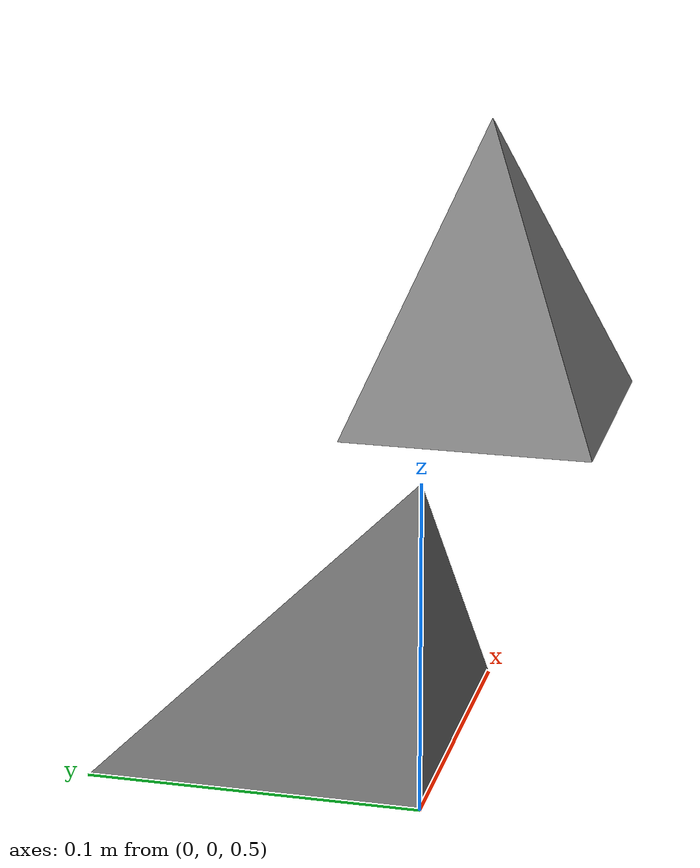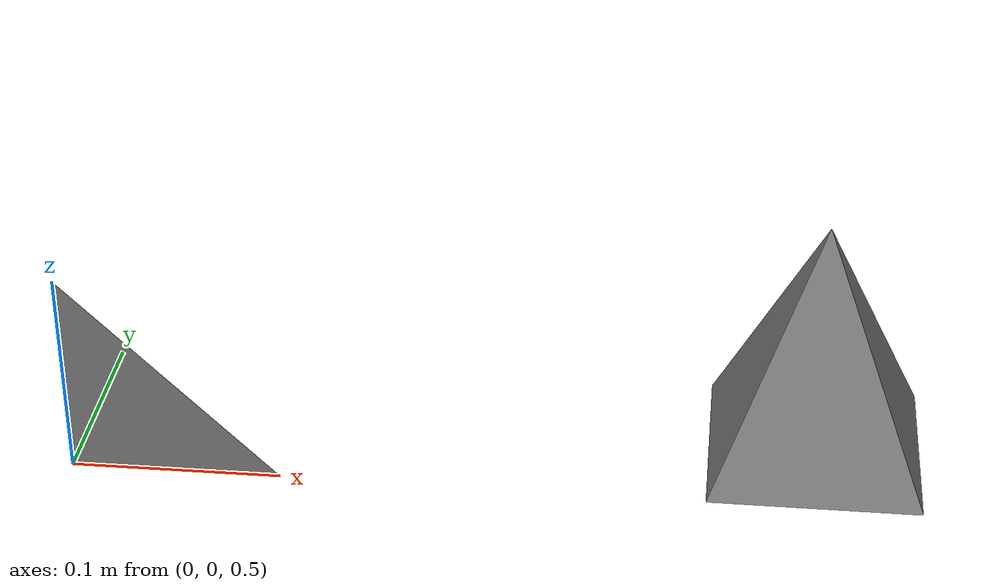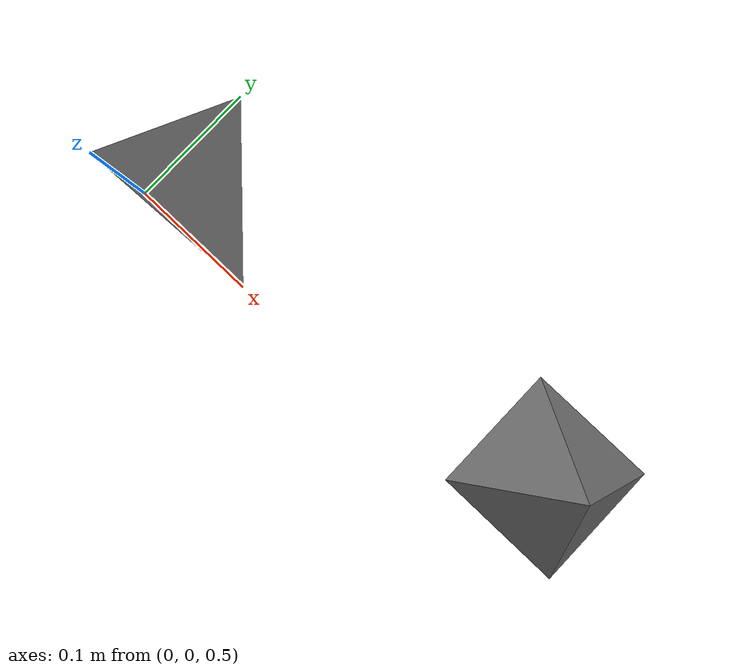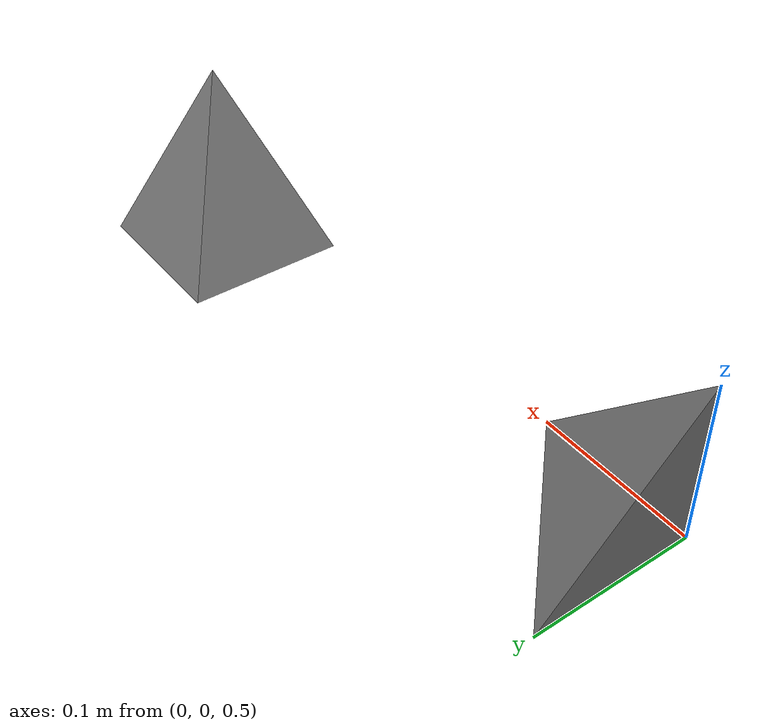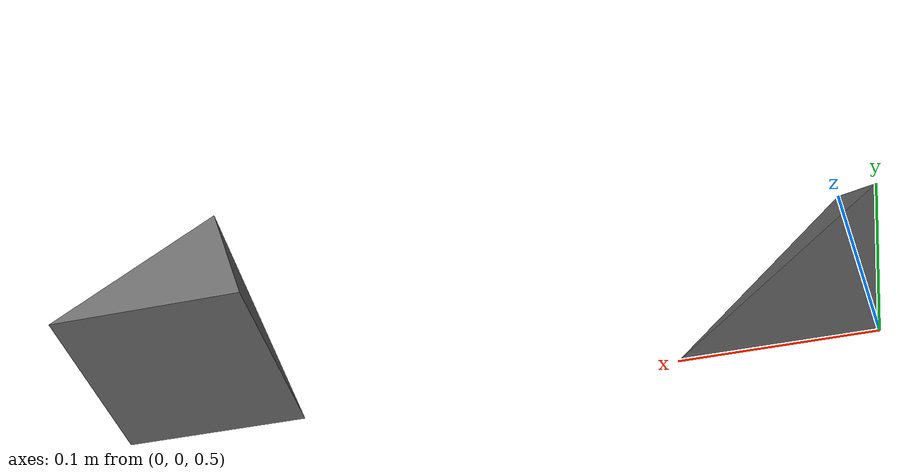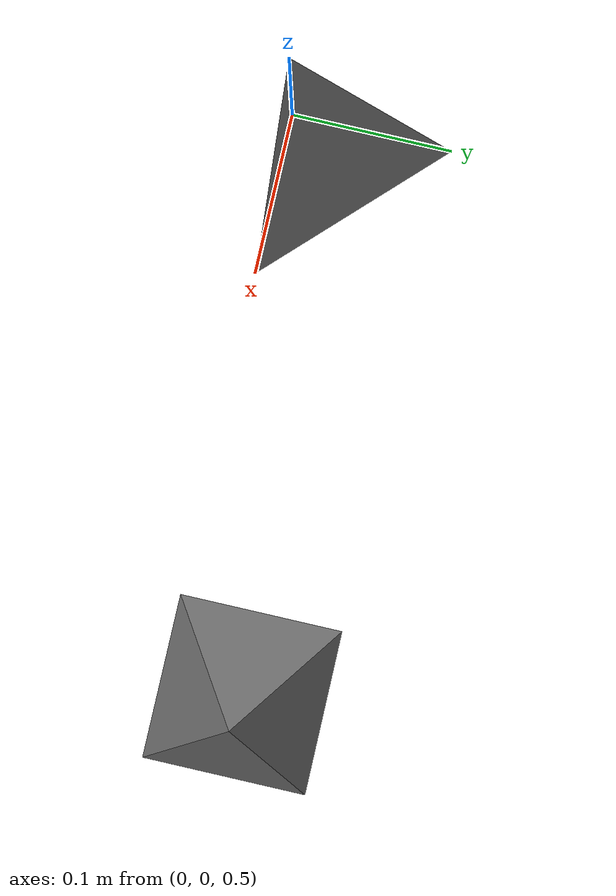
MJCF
<mujoco model="mesh_geom_inline">
  <compiler angle="degree"/>
  <asset>
    <mesh name="tetra_inline" scale="1 1 1"
          vertex="0 0 0  0.1 0 0  0 0.1 0  0 0 0.1"/>
    <mesh name="pyramid" vertex="0 0 0  0.1 0 0  0.1 0.1 0  0 0.1 0  0.05 0.05 0.12"/>
  </asset>
  <worldbody>
    <body name="m1" pos="0 0 0.5">
      <freejoint/>
      <geom name="tetra_g" type="mesh" mesh="tetra_inline"/>
    </body>
    <body name="m2" pos="0.3 0 0.5">
      <freejoint/>
      <geom name="pyr_g" type="mesh" mesh="pyramid"/>
    </body>
  </worldbody>
</mujoco>
